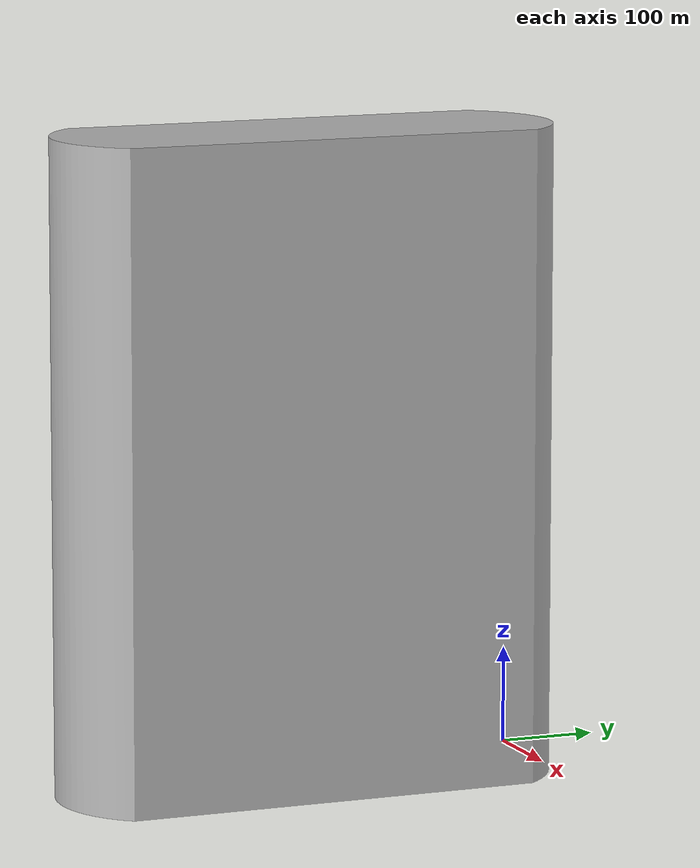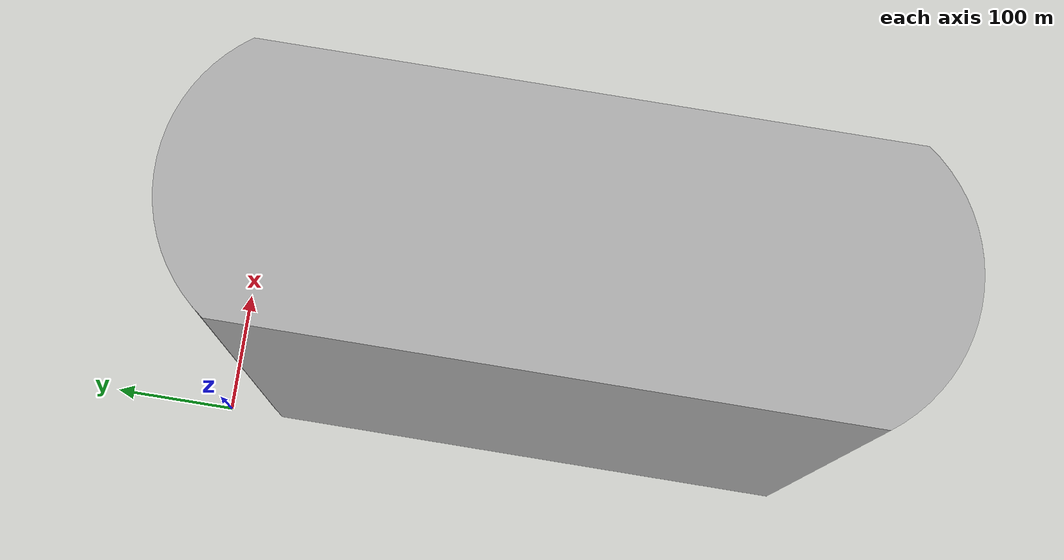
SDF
<?xml version="1.0"?>
<sdf version="1.9">
    <model name="CastIronRadiator">
        <pose>0 0 0 0 0 0</pose>
        <static>false</static>

        <link name="link">
            <pose>0 0 0 0 0 0</pose>
            <inertial>
                <inertia>
                    <ixx>8.794</ixx>
                    <ixy>-0.00000604</ixy>
                    <ixz>-0.00027907</ixz>
                    <iyy>6.3266752</iyy>
                    <iyz>-0.00000326</iyz>
                    <izz>3.17140978</izz>
                </inertia>
                <mass>145.789</mass>
            </inertial>
            <collision name="radiator_collision">
                <pose>0 0 0 0 0 0</pose>
                <geometry>
                    <mesh>
                        <uri>model://CastIronRadiator/meshes/collision.stl</uri>
                    </mesh>
                </geometry>
            </collision>
            <visual name="radiator_visual">
                <pose>0 0 0 0 0 0</pose>
                <geometry>
                    <mesh>
                        <uri>model://CastIronRadiator/meshes/radiator.dae</uri>
                    </mesh>
                </geometry>
                <plugin filename="ignition-gazebo-thermal-system" name="ignition::gazebo::systems::Thermal">
                    <temperature>325.0</temperature>
                </plugin>
            </visual>
        </link>
    </model>
</sdf>
